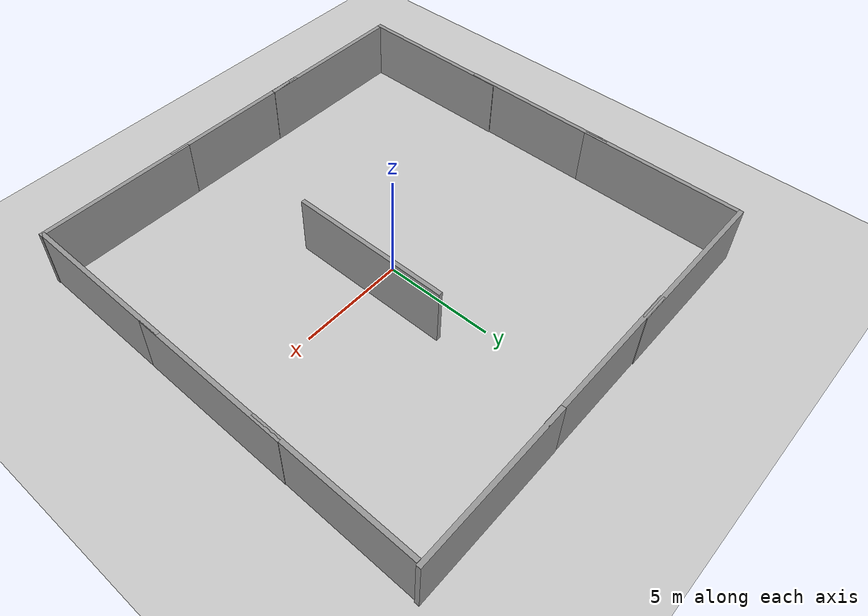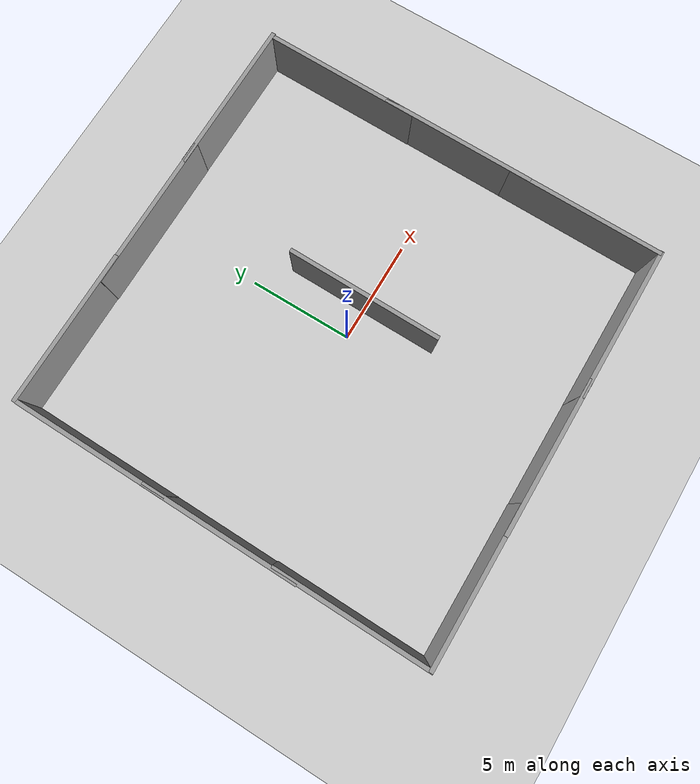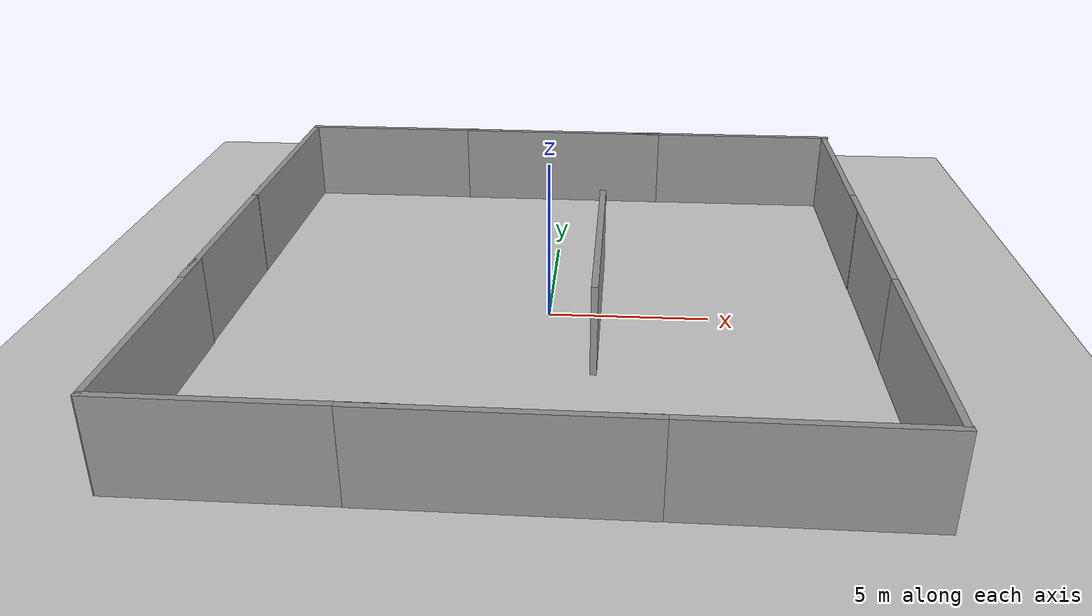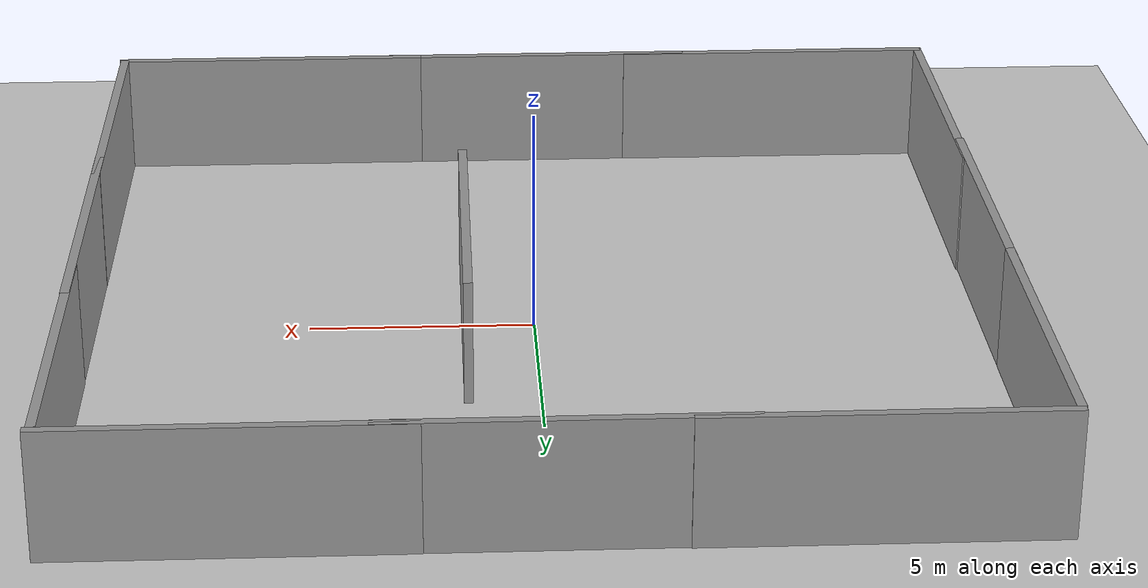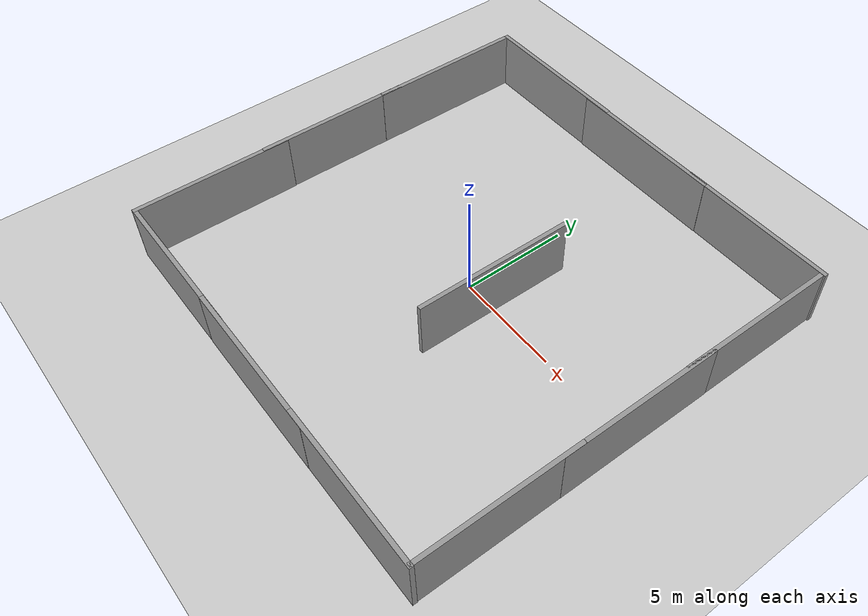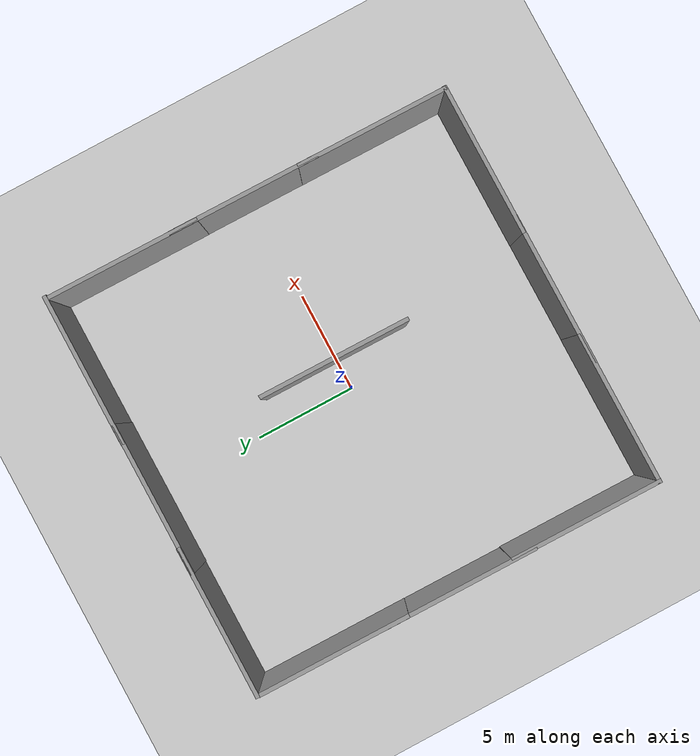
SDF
<sdf version="1.6">
 <world name="default">
  <light name="sun" type="directional">
   <pose>0 0 100 0 -0 0</pose>
   <diffuse>0.8 0.8 0.8 1</diffuse>
   <specular>0.1 0.1 0.1 1</specular>
   <attenuation>
    <range>1000</range>
    <constant>0.9</constant>
    <linear>0.01</linear>
    <quadratic>0.001</quadratic>
   </attenuation>
   <direction>-0.5 0.5 -1</direction>
  </light>
  <model name="ground_plane">
   <static>1</static>
   <link name="link">
    <collision name="collision">
     <geometry><plane><normal>0 0 1</normal><size>100 100</size></plane></geometry>
     <surface><friction><ode><mu>100</mu><mu2>50</mu2></ode></friction></surface>
    </collision>
    <visual name="visual">
     <cast_shadows>0</cast_shadows>
     <geometry><plane><normal>0 0 1</normal><size>100 100</size></plane></geometry>
     <material>
      <ambient>1.0 1.0 1.0 1.0</ambient>
      <diffuse>0.8 0.8 0.8 1.0</diffuse>
      <specular>0.01 0.01 0.01 1.000000</specular>
     </material>
    </visual>
   </link>
  </model>
  <gravity>0 0 -9.8</gravity>
  <magnetic_field>6e-06 2.3e-05 -4.2e-05</magnetic_field>
  <atmosphere type="adiabatic"/>
  <physics name="default_physics" default="0" type="ode">
   <max_step_size>0.001</max_step_size>
   <real_time_factor>1</real_time_factor>
   <real_time_update_rate>1000</real_time_update_rate>
  </physics>
  <scene><ambient>0.4 0.4 0.4 1</ambient><background>0.7 0.7 0.7 1</background><shadows>1</shadows></scene>
  <spherical_coordinates>
   <surface_model>EARTH_WGS84</surface_model>
   <latitude_deg>0</latitude_deg>
   <longitude_deg>0</longitude_deg>
   <elevation>0</elevation>
   <heading_deg>0</heading_deg>
  </spherical_coordinates>
  <model name="grey_wall">
   <static>1</static>
   <link name="link">
    <pose>0 0 1.4 0 -0 0</pose>
    <collision name="collision"><geometry><box><size>7.5 0.2 2.8</size></box></geometry></collision>
    <visual name="visual">
     <cast_shadows>0</cast_shadows>
     <geometry><box><size>7.5 0.2 2.8</size></box></geometry>
     <material>
      <script>
       <uri>model://grey_wall/materials/scripts</uri>
       <uri>model://grey_wall/materials/textures</uri>
       <name>vrc/grey_wall</name>
      </script>
     </material>
    </visual>
   </link>
   <pose>-0.430951 -10.0176 0 0 -0 0</pose>
  </model>
  <model name="grey_wall_0">
   <static>1</static>
   <link name="link">
    <pose>0 0 1.4 0 -0 0</pose>
    <collision name="collision"><geometry><box><size>7.5 0.2 2.8</size></box></geometry></collision>
    <visual name="visual">
     <cast_shadows>0</cast_shadows>
     <geometry><box><size>7.5 0.2 2.8</size></box></geometry>
     <material>
      <script>
       <uri>model://grey_wall/materials/scripts</uri>
       <uri>model://grey_wall/materials/textures</uri>
       <name>vrc/grey_wall</name>
      </script>
     </material>
    </visual>
   </link>
   <pose>-6.43801 -10.0068 0 0 -0 0</pose>
  </model>
  <model name="grey_wall_1">
   <static>1</static>
   <link name="link">
    <pose>0 0 1.4 0 -0 0</pose>
    <collision name="collision"><geometry><box><size>7.5 0.2 2.8</size></box></geometry></collision>
    <visual name="visual">
     <cast_shadows>0</cast_shadows>
     <geometry><box><size>7.5 0.2 2.8</size></box></geometry>
     <material>
      <script>
       <uri>model://grey_wall/materials/scripts</uri>
       <uri>model://grey_wall/materials/textures</uri>
       <name>vrc/grey_wall</name>
      </script>
     </material>
    </visual>
   </link>
   <pose>-0.187528 10.1006 0 0 -0 0</pose>
  </model>
  <model name="grey_wall_2">
   <static>1</static>
   <link name="link">
    <pose>0 0 1.4 0 -0 0</pose>
    <collision name="collision"><geometry><box><size>7.5 0.2 2.8</size></box></geometry></collision>
    <visual name="visual">
     <cast_shadows>0</cast_shadows>
     <geometry><box><size>7.5 0.2 2.8</size></box></geometry>
     <material>
      <script>
       <uri>model://grey_wall/materials/scripts</uri>
       <uri>model://grey_wall/materials/textures</uri>
       <name>vrc/grey_wall</name>
      </script>
     </material>
    </visual>
   </link>
   <pose>-6.34448 10.1286 0 0 -0 0</pose>
  </model>
  <model name="grey_wall_3">
   <static>1</static>
   <link name="link">
    <pose>0 0 1.4 0 -0 0</pose>
    <collision name="collision"><geometry><box><size>7.5 0.2 2.8</size></box></geometry></collision>
    <visual name="visual">
     <cast_shadows>0</cast_shadows>
     <geometry><box><size>7.5 0.2 2.8</size></box></geometry>
     <material>
      <script>
       <uri>model://grey_wall/materials/scripts</uri>
       <uri>model://grey_wall/materials/textures</uri>
       <name>vrc/grey_wall</name>
      </script>
     </material>
    </visual>
   </link>
   <pose>-10.0924 -6.35537 0 0 0 -1.57741</pose>
  </model>
  <model name="grey_wall_3_clone">
   <static>1</static>
   <link name="link">
    <pose>0 0 1.4 0 -0 0</pose>
    <collision name="collision"><geometry><box><size>7.5 0.2 2.8</size></box></geometry></collision>
    <visual name="visual">
     <cast_shadows>0</cast_shadows>
     <geometry><box><size>7.5 0.2 2.8</size></box></geometry>
     <material>
      <script>
       <uri>model://grey_wall/materials/scripts</uri>
       <uri>model://grey_wall/materials/textures</uri>
       <name>vrc/grey_wall</name>
      </script>
     </material>
    </visual>
   </link>
   <pose>-10.0385 6.29221 0 0 0 -1.57741</pose>
  </model>
  <model name="grey_wall_3_clone_0">
   <static>1</static>
   <link name="link">
    <pose>0 0 1.4 0 -0 0</pose>
    <collision name="collision"><geometry><box><size>7.5 0.2 2.8</size></box></geometry></collision>
    <visual name="visual">
     <cast_shadows>0</cast_shadows>
     <geometry><box><size>7.5 0.2 2.8</size></box></geometry>
     <material>
      <script>
       <uri>model://grey_wall/materials/scripts</uri>
       <uri>model://grey_wall/materials/textures</uri>
       <name>vrc/grey_wall</name>
      </script>
     </material>
    </visual>
   </link>
   <pose>-10.0852 -0.090618 0 0 0 -1.57741</pose>
  </model>
  <model name="grey_wall_clone">
   <static>1</static>
   <link name="link">
    <pose>0 0 1.4 0 -0 0</pose>
    <collision name="collision"><geometry><box><size>7.5 0.2 2.8</size></box></geometry></collision>
    <visual name="visual">
     <cast_shadows>0</cast_shadows>
     <geometry><box><size>7.5 0.2 2.8</size></box></geometry>
     <material>
      <script>
       <uri>model://grey_wall/materials/scripts</uri>
       <uri>model://grey_wall/materials/textures</uri>
       <name>vrc/grey_wall</name>
      </script>
     </material>
    </visual>
   </link>
   <pose>6.15839 -10.0125 0 0 -0 0</pose>
  </model>
  <model name="grey_wall_3_clone_1">
   <static>1</static>
   <link name="link">
    <pose>0 0 1.4 0 -0 0</pose>
    <collision name="collision"><geometry><box><size>7.5 0.2 2.8</size></box></geometry></collision>
    <visual name="visual">
     <cast_shadows>0</cast_shadows>
     <geometry><box><size>7.5 0.2 2.8</size></box></geometry>
     <material>
      <script>
       <uri>model://grey_wall/materials/scripts</uri>
       <uri>model://grey_wall/materials/textures</uri>
       <name>vrc/grey_wall</name>
      </script>
     </material>
    </visual>
   </link>
   <pose>9.81082 -6.30361 0 0 0 -1.57741</pose>
  </model>
  <model name="grey_wall_3_clone_2">
   <static>1</static>
   <link name="link">
    <pose>0 0 1.4 0 -0 0</pose>
    <collision name="collision"><geometry><box><size>7.5 0.2 2.8</size></box></geometry></collision>
    <visual name="visual">
     <cast_shadows>0</cast_shadows>
     <geometry><box><size>7.5 0.2 2.8</size></box></geometry>
     <material>
      <script>
       <uri>model://grey_wall/materials/scripts</uri>
       <uri>model://grey_wall/materials/textures</uri>
       <name>vrc/grey_wall</name>
      </script>
     </material>
    </visual>
   </link>
   <pose>9.85875 0.188279 0 0 0 -1.57741</pose>
  </model>
  <model name="grey_wall_3_clone_3">
   <static>1</static>
   <link name="link">
    <pose>0 0 1.4 0 -0 0</pose>
    <collision name="collision"><geometry><box><size>7.5 0.2 2.8</size></box></geometry></collision>
    <visual name="visual">
     <cast_shadows>0</cast_shadows>
     <geometry><box><size>7.5 0.2 2.8</size></box></geometry>
     <material>
      <script>
       <uri>model://grey_wall/materials/scripts</uri>
       <uri>model://grey_wall/materials/textures</uri>
       <name>vrc/grey_wall</name>
      </script>
     </material>
    </visual>
   </link>
   <pose>9.88561 6.25818 0 0 0 -1.57741</pose>
  </model>
  <model name="grey_wall_1_clone">
   <static>1</static>
   <link name="link">
    <pose>0 0 1.4 0 -0 0</pose>
    <collision name="collision"><geometry><box><size>7.5 0.2 2.8</size></box></geometry></collision>
    <visual name="visual">
     <cast_shadows>0</cast_shadows>
     <geometry><box><size>7.5 0.2 2.8</size></box></geometry>
     <material>
      <script>
       <uri>model://grey_wall/materials/scripts</uri>
       <uri>model://grey_wall/materials/textures</uri>
       <name>vrc/grey_wall</name>
      </script>
     </material>
    </visual>
   </link>
   <pose>6.32176 10.1148 0 0 -0 0</pose>
  </model>
  <model name="grey_wall_3_clone_0_clone">
   <static>1</static>
   <link name="link">
    <pose>0 0 1.4 0 -0 0</pose>
    <collision name="collision"><geometry><box><size>7.5 0.2 2.8</size></box></geometry></collision>
    <visual name="visual">
     <cast_shadows>0</cast_shadows>
     <geometry><box><size>7.5 0.2 2.8</size></box></geometry>
     <material>
      <script>
       <uri>model://grey_wall/materials/scripts</uri>
       <uri>model://grey_wall/materials/textures</uri>
       <name>vrc/grey_wall</name>
      </script>
     </material>
    </visual>
   </link>
   <pose>1.52165 0.080496 0 0 0 -1.57741</pose>
  </model>
 </world>
</sdf>
